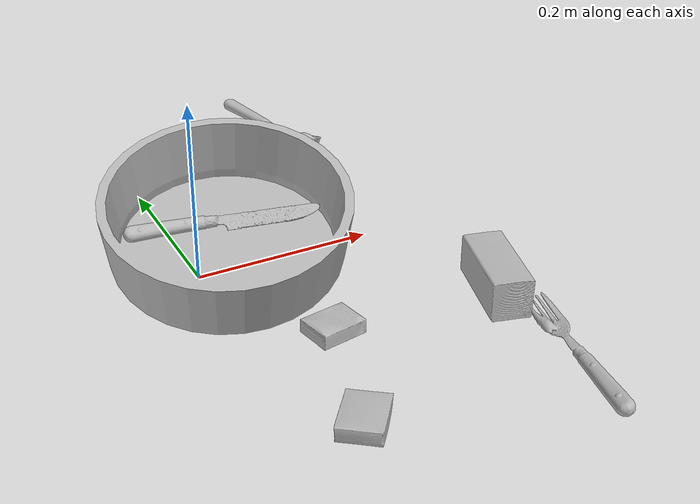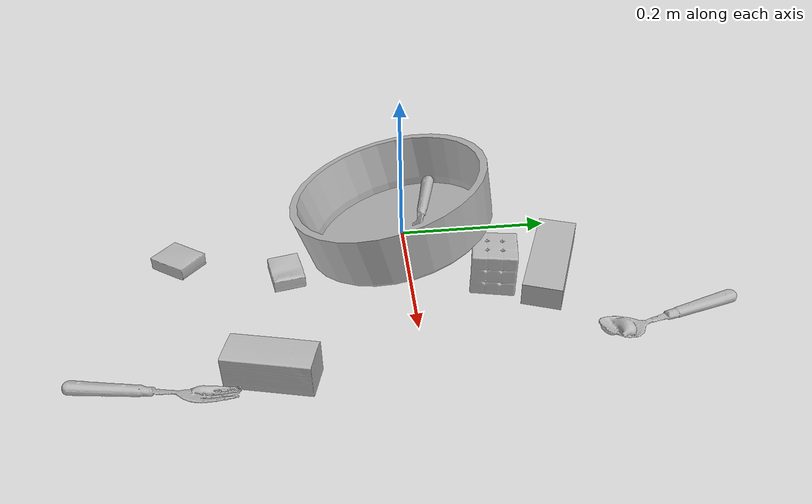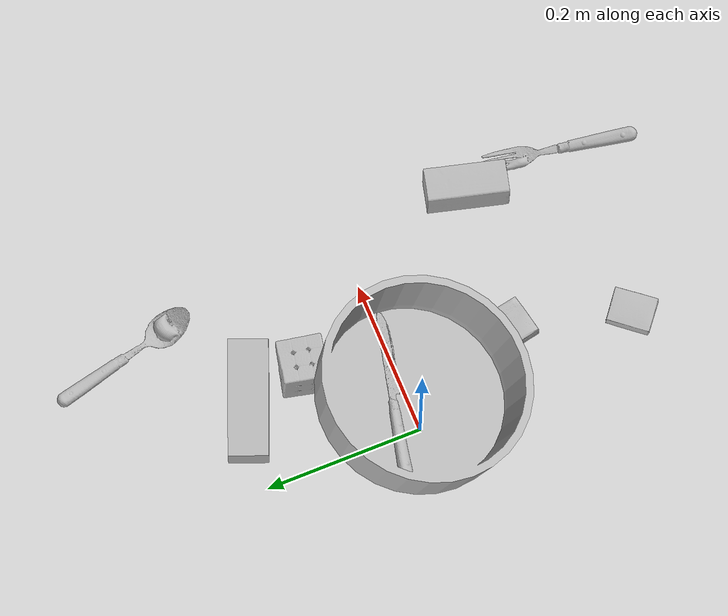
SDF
<sdf version="1.4">
  <world name="default">
    <light name="light1" type="point">
      <pose>0 0 1 0 0 0</pose>
      <diffuse>3 3 3 1</diffuse>
      <specular>3 3 3 1</specular>
    </light>
    <light name="light2" type="point">
      <pose>0 0.5 2 0 0 0</pose>
      <diffuse>1 1 1 1</diffuse>
      <specular>1 1 1 1</specular>
    </light>
    <light name="light3" type="point">
      <pose>0 0.5 2 0 0 0</pose>
      <diffuse>3 3 3 1</diffuse>
      <specular>3 3 3 1</specular>
    </light>
    <scene>
      <ambient>0.7 0.7 0.7</ambient>
    </scene>
    <model name="box11">
      <link name="link_box11">
        <collision name="default">
          <geometry>
            <mesh>
              <uri>model://cracker_box/collision_meshes/collision.obj</uri>
              <scale>0.25 0.25 0.25</scale>
            </mesh>
          </geometry>
          <surface>
            <friction>
              <ode>
                <mu>0.5</mu>
                <mu2>0.5</mu2>
              </ode>
            </friction>
          <contact>
        <ode>
            <max_vel>0</max_vel>
            <min_depth>0.0001</min_depth>
            <kp>1e8</kp>
        </ode>
    </contact></surface>
        </collision>
        <visual name="default">
          <geometry>
            <mesh>
              <uri>model://cracker_box/visual_meshes/visual.dae</uri>
              <scale>0.25 0.25 0.25</scale>
            </mesh>
          </geometry>
        </visual>
        <inertial>
          <mass>0.04448898881673813</mass>
          <pose>0.00023660270380787551 6.358561950037256e-05 -0.000425738311605528 -0.00031620780372907927 -0.011106488668730609 0.002546795468482302</pose>
          <inertia>
            <ixx>7.0725087e-06</ixx>
            <iyy>1.1678099e-05</iyy>
            <izz>1.666572e-05</izz>
            <ixy>0</ixy>
            <ixz>0</ixz>
            <iyz>0</iyz>
          </inertia>
        </inertial>
      </link>
      <pose>0.08171509206295013 -0.15808604657649994 0.009120447561144829 -0.01178806647716518 -0.007367129289804659 -2.944917523627196</pose>
    </model>
    <model name="box12">
      <link name="link_box12">
        <collision name="default">
          <geometry>
            <mesh>
              <uri>model://wood_block/collision_meshes/collision.obj</uri>
              <scale>0.5 0.5 0.5</scale>
            </mesh>
          </geometry>
          <surface>
            <friction>
              <ode>
                <mu>0.5</mu>
                <mu2>0.5</mu2>
              </ode>
            </friction>
          <contact>
        <ode>
            <max_vel>0</max_vel>
            <min_depth>0.0001</min_depth>
            <kp>1e8</kp>
        </ode>
    </contact></surface>
        </collision>
        <visual name="default">
          <geometry>
            <mesh>
              <uri>model://wood_block/visual_meshes/visual.dae</uri>
              <scale>0.5 0.5 0.5</scale>
            </mesh>
          </geometry>
        </visual>
        <inertial>
          <mass>0.30308207869529724</mass>
          <pose>-2.906657982748584e-06 -0.000285404734313488 0.00013204291462898254 -0.05220975528484064 -0.0051926956083073895 -0.006861380255216688</pose>
          <inertia>
            <ixx>0.00010139242</ixx>
            <iyy>0.00032029866</iyy>
            <izz>0.0003191006</izz>
            <ixy>0</ixy>
            <ixz>0</ixz>
            <iyz>0</iyz>
          </inertia>
        </inertial>
      </link>
      <pose>0.2655922472476959 -0.1708814799785614 0.022629264742136 -0.0052085908788311285 0.005718709945960869 -1.8231182625313425</pose>
    </model>
    <model name="box13">
      <link name="link_box13">
        <collision name="default">
          <geometry>
            <mesh>
              <uri>model://pudding_box/collision_meshes/collision.obj</uri>
              <scale>0.5 0.5 0.5</scale>
            </mesh>
          </geometry>
          <surface>
            <friction>
              <ode>
                <mu>0.5</mu>
                <mu2>0.5</mu2>
              </ode>
            </friction>
          <contact>
        <ode>
            <max_vel>0</max_vel>
            <min_depth>0.0001</min_depth>
            <kp>1e8</kp>
        </ode>
    </contact></surface>
        </collision>
        <visual name="default">
          <geometry>
            <mesh>
              <uri>model://pudding_box/visual_meshes/visual.dae</uri>
              <scale>0.5 0.5 0.5</scale>
            </mesh>
          </geometry>
        </visual>
        <inertial>
          <mass>0.06630203872919083</mass>
          <pose>0.00024474109522998333 0.00040339428232982755 -0.00025944141088984907 0.0052131027026664865 -0.006603797821229493 0.02007983447369903</pose>
          <inertia>
            <ixx>1.873776e-05</ixx>
            <iyy>1.2606899e-05</iyy>
            <izz>2.7671198e-05</izz>
            <ixy>0</ixy>
            <ixz>0</ixz>
            <iyz>0</iyz>
          </inertia>
        </inertial>
      </link>
      <pose>0.041131313890218735 -0.2990160584449768 0.00986290629953146 0.022348405636062687 -0.01139176397741384 -0.6721035441378513</pose>
    </model>
    <model name="box21">
      <link name="link_box21">
        <collision name="default">
          <geometry>
            <mesh>
              <uri>model://sugar_box/collision_meshes/collision.obj</uri>
              <scale>0.5 0.5 0.5</scale>
            </mesh>
          </geometry>
          <surface>
            <friction>
              <ode>
                <mu>0.5</mu>
                <mu2>0.5</mu2>
              </ode>
            </friction>
          <contact>
        <ode>
            <max_vel>0</max_vel>
            <min_depth>0.0001</min_depth>
            <kp>1e8</kp>
        </ode>
    </contact></surface>
        </collision>
        <visual name="default">
          <geometry>
            <mesh>
              <uri>model://sugar_box/visual_meshes/visual.dae</uri>
              <scale>0.5 0.5 0.5</scale>
            </mesh>
          </geometry>
        </visual>
        <inertial>
          <mass>0.09398066252470016</mass>
          <pose>0.0005171863595023751 1.924554817378521e-05 -0.00018182402709499002 -0.00040462650409139634 0.0010506636387973133 0.002615378555960767</pose>
          <inertia>
            <ixx>1.9576108e-05</ixx>
            <iyy>6.3274e-05</iyy>
            <izz>7.574653e-05</izz>
            <ixy>0</ixy>
            <ixz>0</ixz>
            <iyz>0</iyz>
          </inertia>
        </inertial>
      </link>
      <pose>0.01798613928258419 0.02160063572227955 0.011498747393488884 0.022949520420067076 -0.02276301799049327 0.79386845342796</pose>
    </model>
    <model name="box22">
      <link name="link_box22">
        <collision name="default">
          <geometry>
            <mesh>
              <uri>model://jenga/collision_meshes/collision.obj</uri>
              <scale>1.0 1.0 1.0</scale>
            </mesh>
          </geometry>
          <surface>
            <friction>
              <ode>
                <mu>0.5</mu>
                <mu2>0.5</mu2>
              </ode>
            </friction>
          <contact>
        <ode>
            <max_vel>0</max_vel>
            <min_depth>0.0001</min_depth>
            <kp>1e8</kp>
        </ode>
    </contact></surface>
        </collision>
        <visual name="default">
          <geometry>
            <mesh>
              <uri>model://jenga/visual_meshes/visual.dae</uri>
              <scale>1.0 1.0 1.0</scale>
            </mesh>
          </geometry>
        </visual>
        <inertial>
          <mass>0.2620435655117035</mass>
          <pose>-2.5028555228345795e-07 -0.0001025000965455547 -4.092339804628864e-05 0.0 -7.342154049184251e-07 0.0</pose>
          <inertia>
            <ixx>7.251381e-05</ixx>
            <iyy>0.0004913516</iyy>
            <izz>0.00052455964</izz>
            <ixy>0</ixy>
            <ixz>0</ixz>
            <iyz>0</iyz>
          </inertia>
        </inertial>
      </link>
      <pose>0.10932209342718124 0.18199414014816284 0.014999998733401299 2.387354444254836e-10 -2.897602472508496e-09 2.7674840090483532</pose>
    </model>
    <model name="box23">
      <link name="link_box23">
        <collision name="default">
          <geometry>
            <mesh>
              <uri>model://rubiks_cube/collision_meshes/collision.obj</uri>
              <scale>1.0 1.0 1.0</scale>
            </mesh>
          </geometry>
          <surface>
            <friction>
              <ode>
                <mu>0.5</mu>
                <mu2>0.5</mu2>
              </ode>
            </friction>
          <contact>
        <ode>
            <max_vel>0</max_vel>
            <min_depth>0.0001</min_depth>
            <kp>1e8</kp>
        </ode>
    </contact></surface>
        </collision>
        <visual name="default">
          <geometry>
            <mesh>
              <uri>model://rubiks_cube/visual_meshes/visual.dae</uri>
              <scale>1.0 1.0 1.0</scale>
            </mesh>
          </geometry>
        </visual>
        <inertial>
          <mass>0.1897622048854828</mass>
          <pose>2.6721043468569405e-05 5.256967051536776e-05 -7.264316082000732e-06 -0.054673156626660294 -0.09814014504853939 -0.034453657529750985</pose>
          <inertia>
            <ixx>0.00010485636</ixx>
            <iyy>0.00010436737</iyy>
            <izz>0.000105725274</izz>
            <ixy>0</ixy>
            <ixz>0</ixz>
            <iyz>0</iyz>
          </inertia>
        </inertial>
      </link>
      <pose>0.1216546967625618 0.10533331334590912 0.028677048161625862 1.1866578064809636e-05 -0.0001847337983661873 -0.19267443777502183</pose>
    </model>
    <model name="plate1">
      <link name="link_plate1">
        <collision name="default">
          <geometry>
            <mesh>
              <uri>model://pan_tefal/collision_meshes/collision.obj</uri>
              <scale>1.0 1.0 1.0</scale>
            </mesh>
          </geometry>
          <surface>
            <friction>
              <ode>
                <mu>0.5</mu>
                <mu2>0.5</mu2>
              </ode>
            </friction>
          <contact>
        <ode>
            <max_vel>0</max_vel>
            <min_depth>0.0001</min_depth>
            <kp>1e8</kp>
        </ode>
    </contact></surface>
        </collision>
        <visual name="default">
          <geometry>
            <mesh>
              <uri>model://pan_tefal/visual_meshes/visual.dae</uri>
              <scale>1.0 1.0 1.0</scale>
            </mesh>
          </geometry>
        </visual>
        <inertial>
          <mass>0.8768928050994873</mass>
          <pose>-0.00018002584693022072 3.279091833974235e-05 -0.008514934219419956 0.0008190272128915226 -0.0003301349770144462 -0.3318573305948388</pose>
          <inertia>
            <ixx>0.0060531492</ixx>
            <iyy>0.006092174</iyy>
            <izz>0.011142679</izz>
            <ixy>0</ixy>
            <ixz>0</ixz>
            <iyz>0</iyz>
          </inertia>
        </inertial>
      </link>
      <pose>0.03076952137053013 -0.012050195597112179 0.06352939456701279 0.0920398750763408 -0.22308088509201937 0.8764425470017575</pose>
    </model>
    <model name="silverware1">
      <link name="link_silverware1">
        <collision name="default">
          <geometry>
            <mesh>
              <uri>model://spoon/collision_meshes/collision.obj</uri>
              <scale>1.0 1.0 1.0</scale>
            </mesh>
          </geometry>
          <surface>
            <friction>
              <ode>
                <mu>0.5</mu>
                <mu2>0.5</mu2>
              </ode>
            </friction>
          <contact>
        <ode>
            <max_vel>0</max_vel>
            <min_depth>0.0001</min_depth>
            <kp>1e8</kp>
        </ode>
    </contact></surface>
        </collision>
        <visual name="default">
          <geometry>
            <mesh>
              <uri>model://spoon/visual_meshes/visual.dae</uri>
              <scale>1.0 1.0 1.0</scale>
            </mesh>
          </geometry>
        </visual>
        <inertial>
          <mass>0.030811671167612076</mass>
          <pose>-0.005526314955204725 -0.0016034170985221863 -0.0007271655485965312 0.03521832474385929 -0.03906585488360169 0.0061506134218646934</pose>
          <inertia>
            <ixx>1.713795e-06</ixx>
            <iyy>0.000117237374</iyy>
            <izz>0.00011808256</izz>
            <ixy>0</ixy>
            <ixz>0</ixz>
            <iyz>0</iyz>
          </inertia>
        </inertial>
      </link>
      <pose>0.22175443172454834 0.3029586672782898 0.008385262452065945 0.006729234308180418 0.026892977616550778 -1.3175917128153105</pose>
    </model>
    <model name="silverware2">
      <link name="link_silverware2">
        <collision name="default">
          <geometry>
            <mesh>
              <uri>model://fork/collision_meshes/collision.obj</uri>
              <scale>1.0 1.0 1.0</scale>
            </mesh>
          </geometry>
          <surface>
            <friction>
              <ode>
                <mu>0.5</mu>
                <mu2>0.5</mu2>
              </ode>
            </friction>
          <contact>
        <ode>
            <max_vel>0</max_vel>
            <min_depth>0.0001</min_depth>
            <kp>1e8</kp>
        </ode>
    </contact></surface>
        </collision>
        <visual name="default">
          <geometry>
            <mesh>
              <uri>model://fork/visual_meshes/visual.dae</uri>
              <scale>1.0 1.0 1.0</scale>
            </mesh>
          </geometry>
        </visual>
        <inertial>
          <mass>0.016358599066734314</mass>
          <pose>-0.029570044949650764 0.00046588238910771906 0.0003218862693756819 -0.013550710307666105 -0.010977838412833367 0.014453905587424366</pose>
          <inertia>
            <ixx>5.7346136e-07</ixx>
            <iyy>4.270759e-05</iyy>
            <izz>4.29641e-05</izz>
            <ixy>0</ixy>
            <ixz>0</ixz>
            <iyz>0</iyz>
          </inertia>
        </inertial>
      </link>
      <pose>0.2745700180530548 -0.3019999861717224 0.005741268862038851 -0.1872574903293835 0.024306822973209494 1.3959018499371973</pose>
    </model>
    <model name="silverware3">
      <link name="link_silverware3">
        <collision name="default">
          <geometry>
            <mesh>
              <uri>model://knife/collision_meshes/collision.obj</uri>
              <scale>1.0 1.0 1.0</scale>
            </mesh>
          </geometry>
          <surface>
            <friction>
              <ode>
                <mu>0.5</mu>
                <mu2>0.5</mu2>
              </ode>
            </friction>
          <contact>
        <ode>
            <max_vel>0</max_vel>
            <min_depth>0.0001</min_depth>
            <kp>1e8</kp>
        </ode>
    </contact></surface>
        </collision>
        <visual name="default">
          <geometry>
            <mesh>
              <uri>model://knife/visual_meshes/visual.dae</uri>
              <scale>1.0 1.0 1.0</scale>
            </mesh>
          </geometry>
        </visual>
        <inertial>
          <mass>0.02715744450688362</mass>
          <pose>-0.023785259574651718 0.0015275124460458755 5.062024501967244e-05 0.07304743927496513 0.01724841757037888 -0.007409820832494391</pose>
          <inertia>
            <ixx>7.708383e-07</ixx>
            <iyy>0.00010433449</iyy>
            <izz>0.00010458276</izz>
            <ixy>0</ixy>
            <ixz>0</ixz>
            <iyz>0</iyz>
          </inertia>
        </inertial>
      </link>
      <pose>0.038491833955049515 0.019298341125249863 0.04806119203567505 0.6208363498392039 -0.026468019580666524 -0.23611008029905886</pose>
    </model>
  <physics type="ode">
      <max_contacts>50</max_contacts>
      <ode>
        <solver>
          <type>quick</type>
          <iters>75</iters>
        </solver>
        <constraints>
          <contact_max_correcting_vel>0</contact_max_correcting_vel>
          <contact_surface_layer>0</contact_surface_layer>
        </constraints>
      </ode>
    </physics></world>
</sdf>
